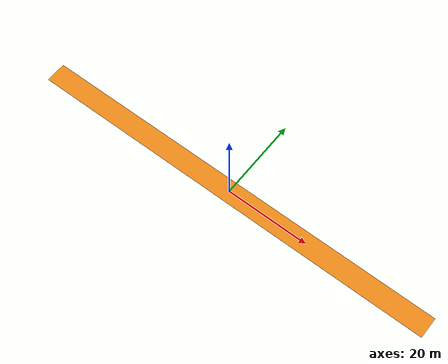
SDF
<?xml version='1.0'?>
<sdf version='1.5'>
  <model name='stepping_stone_long'>
    <pose frame=''>0 0 0 0 0 0</pose>
    <link name='Stairs_2'>
      <visual name='Stairs_2_Visual_0'>
        <pose frame=''>0 0 0 0 0 0</pose>
        <geometry>
          <box>
            <size>100 5 0.01</size>
          </box>
        </geometry>
        <material>
          <script>
            <uri>file://media/materials/scripts/gazebo.material</uri>
            <name>Gazebo/Orange</name>
          </script>
          <ambient>1 1 1 1</ambient>
        </material>
        <meta>
          <layer>0</layer>
        </meta>
      </visual>
      <collision name='Stairs_2_Collision_0'>
        <geometry>
          <polyline>
            <point>-50 -2.5</point>
            <point>-50 2.5</point>
            <point>50 2.5</point>
            <point>50 -2.5</point>
            <height>0</height>
          </polyline>
        </geometry>
        <pose frame=''>0 0 0 0 0 0</pose>
        <surface>
          <contact>
            <collide_bitmask> 0xffff </collide_bitmask>
          </contact>
          <friction>
            <torsional>
              <use_patch_radius> true </use_patch_radius>
              <patch_radius> 0.03 </patch_radius>
              <coefficient> 50000 </coefficient>
            </torsional>
            <ode>
              <mu> 20000 </mu>
              <mu2> 20000 </mu2>
            </ode>
          </friction>
        </surface>
      </collision>
    </link>
    <static>1</static>
  </model>
</sdf>
